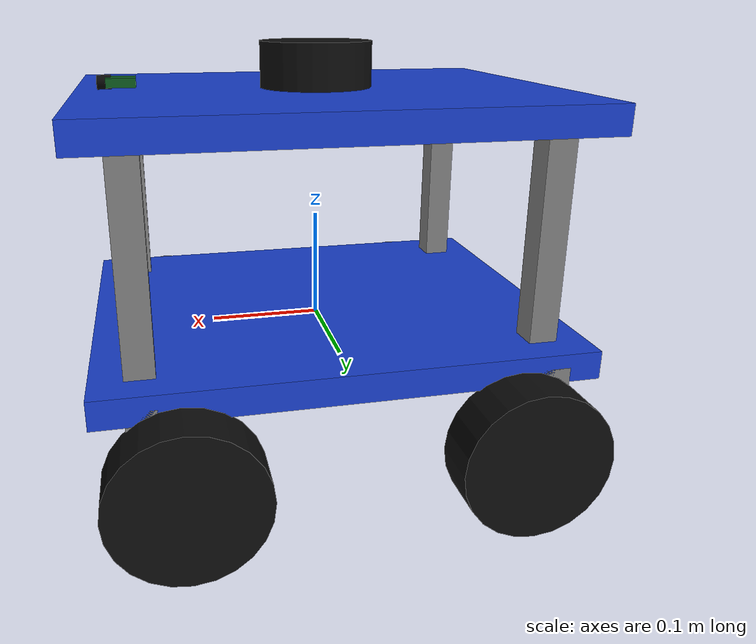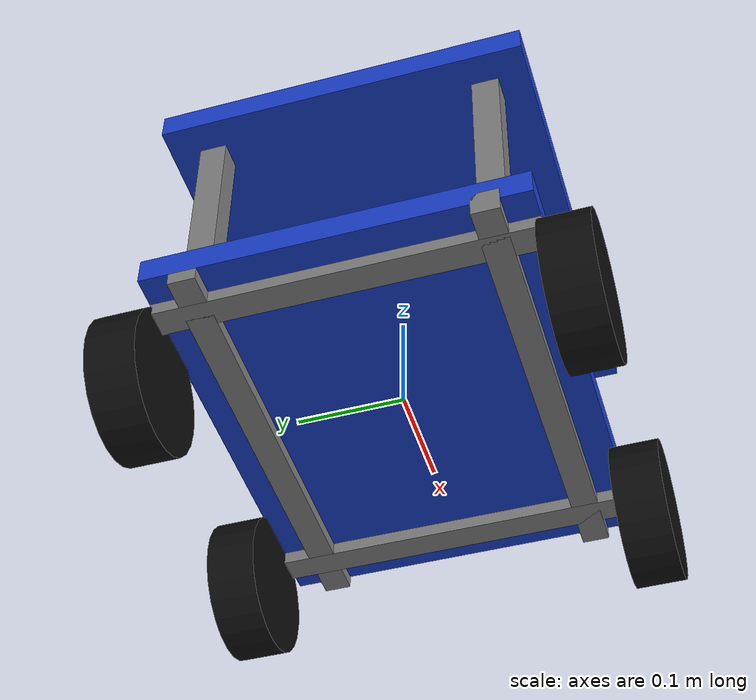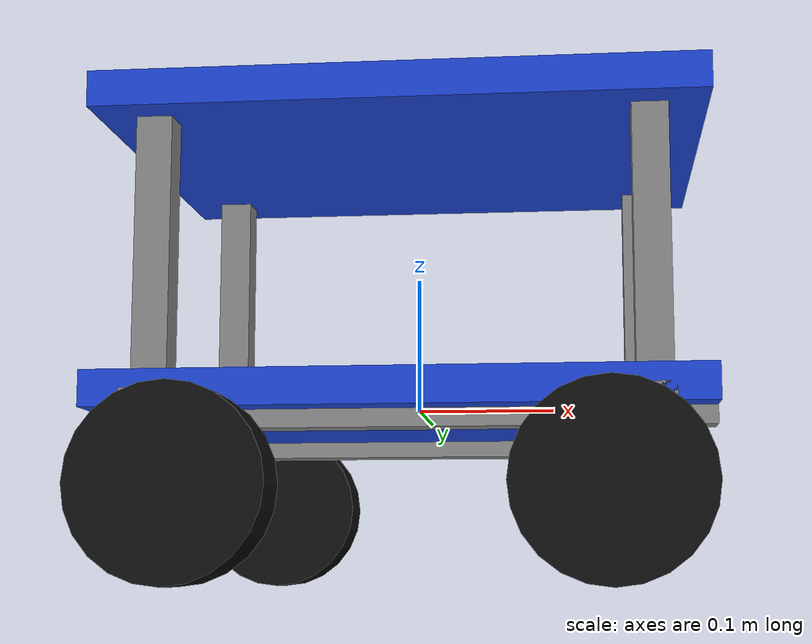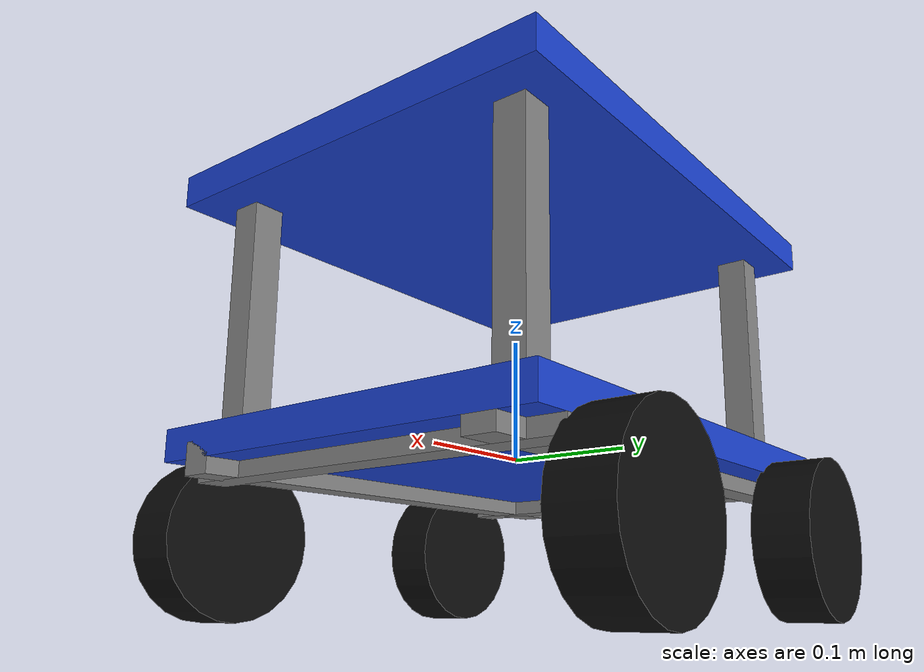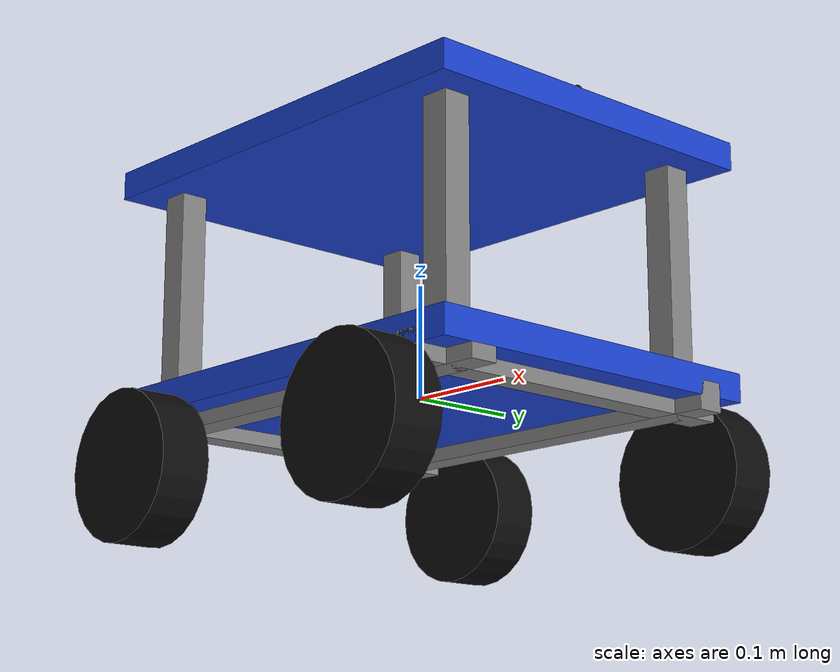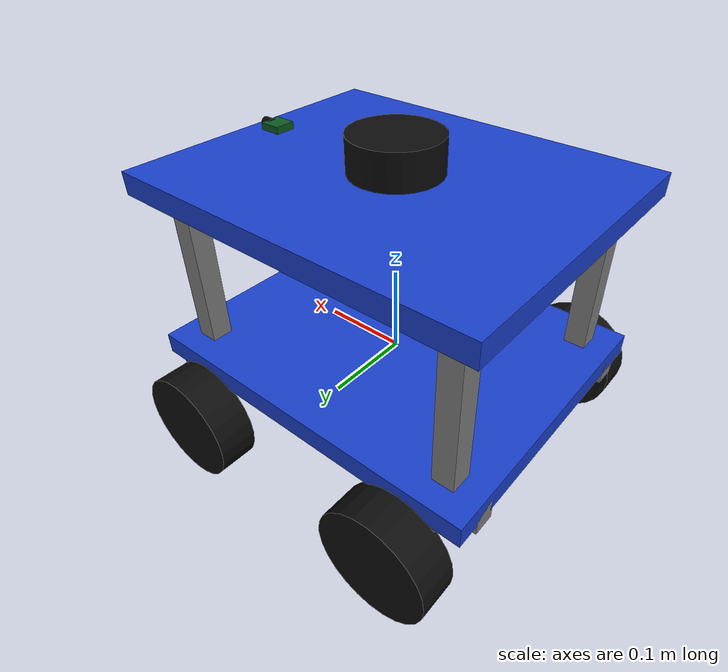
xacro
<?xml version="1.0"?>
<robot xmlns:xacro="http://www.ros.org/wiki/xacro" name="robot">

<xacro:include filename="robot_core.xacro"/>
<xacro:include filename="lidar.xacro"/>
<xacro:include filename="camera.xacro"/>
<xacro:include filename="ros2_control.xacro"/>

</robot>

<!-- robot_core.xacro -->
<robot xmlns:xacro="http://www.ros.org/wiki/xacro" name="agv">

  <!-- ==================== MATERIALS ==================== -->
  <material name="blue">
    <color rgba="0.1 0.25 0.8 1.0"/>
  </material>

  <material name="black">
    <color rgba="0.05 0.05 0.05 1.0"/>
  </material>

  <material name="grey">
    <color rgba="0.5 0.5 0.5 1.0"/>
  </material>

  <!-- ==================== BASE LINK ==================== -->
  <!--
       Gom cac thanh khung duoi va 4 tru vao base_link.
       Khong tao rieng lower_rail, lower_cross hoac support_post.
       Hinh dang khung va tru van duoc giu bang cac khoi box.
  -->

  <link name="base_link">

    <!-- Tam san duoi -->
    <visual>
      <origin xyz="0 0 0" rpy="0 0 0"/>
      <geometry>
        <box size="0.42 0.34 0.025"/>
      </geometry>
      <material name="blue"/>
    </visual>

    <collision>
      <origin xyz="0 0 0" rpy="0 0 0"/>
      <geometry>
        <box size="0.42 0.34 0.025"/>
      </geometry>
    </collision>

    <!-- Thanh khung duoi ben trai -->
    <visual>
      <origin xyz="0 0.13 -0.0125" rpy="0 0 0"/>
      <geometry>
        <box size="0.42 0.025 0.025"/>
      </geometry>
      <material name="grey"/>
    </visual>

    <collision>
      <origin xyz="0 0.13 -0.0125" rpy="0 0 0"/>
      <geometry>
        <box size="0.42 0.025 0.025"/>
      </geometry>
    </collision>

    <!-- Thanh khung duoi ben phai -->
    <visual>
      <origin xyz="0 -0.13 -0.0125" rpy="0 0 0"/>
      <geometry>
        <box size="0.42 0.025 0.025"/>
      </geometry>
      <material name="grey"/>
    </visual>

    <collision>
      <origin xyz="0 -0.13 -0.0125" rpy="0 0 0"/>
      <geometry>
        <box size="0.42 0.025 0.025"/>
      </geometry>
    </collision>

    <!-- Thanh ngang khung duoi phia truoc -->
    <visual>
      <origin xyz="0.17 0 -0.0125" rpy="0 0 0"/>
      <geometry>
        <box size="0.025 0.34 0.025"/>
      </geometry>
      <material name="grey"/>
    </visual>

    <collision>
      <origin xyz="0.17 0 -0.0125" rpy="0 0 0"/>
      <geometry>
        <box size="0.025 0.34 0.025"/>
      </geometry>
    </collision>

    <!-- Thanh ngang khung duoi phia sau -->
    <visual>
      <origin xyz="-0.17 0 -0.0125" rpy="0 0 0"/>
      <geometry>
        <box size="0.025 0.34 0.025"/>
      </geometry>
      <material name="grey"/>
    </visual>

    <collision>
      <origin xyz="-0.17 0 -0.0125" rpy="0 0 0"/>
      <geometry>
        <box size="0.025 0.34 0.025"/>
      </geometry>
    </collision>

    <!-- Tru dung goc truoc ben trai -->
    <visual>
      <origin xyz="0.17 0.13 0.1025" rpy="0 0 0"/>
      <geometry>
        <box size="0.025 0.025 0.18"/>
      </geometry>
      <material name="grey"/>
    </visual>

    <collision>
      <origin xyz="0.17 0.13 0.1025" rpy="0 0 0"/>
      <geometry>
        <box size="0.025 0.025 0.18"/>
      </geometry>
    </collision>

    <!-- Tru dung goc truoc ben phai -->
    <visual>
      <origin xyz="0.17 -0.13 0.1025" rpy="0 0 0"/>
      <geometry>
        <box size="0.025 0.025 0.18"/>
      </geometry>
      <material name="grey"/>
    </visual>

    <collision>
      <origin xyz="0.17 -0.13 0.1025" rpy="0 0 0"/>
      <geometry>
        <box size="0.025 0.025 0.18"/>
      </geometry>
    </collision>

    <!-- Tru dung goc sau ben trai -->
    <visual>
      <origin xyz="-0.17 0.13 0.1025" rpy="0 0 0"/>
      <geometry>
        <box size="0.025 0.025 0.18"/>
      </geometry>
      <material name="grey"/>
    </visual>

    <collision>
      <origin xyz="-0.17 0.13 0.1025" rpy="0 0 0"/>
      <geometry>
        <box size="0.025 0.025 0.18"/>
      </geometry>
    </collision>

    <!-- Tru dung goc sau ben phai -->
    <visual>
      <origin xyz="-0.17 -0.13 0.1025" rpy="0 0 0"/>
      <geometry>
        <box size="0.025 0.025 0.18"/>
      </geometry>
      <material name="grey"/>
    </visual>

    <collision>
      <origin xyz="-0.17 -0.13 0.1025" rpy="0 0 0"/>
      <geometry>
        <box size="0.025 0.025 0.18"/>
      </geometry>
    </collision>

    <!-- Khoi luong va mo-men quan tinh cua khung duoi -->
    <inertial>
      <origin xyz="0 0 0.02" rpy="0 0 0"/>
      <mass value="5.6"/>
      <inertia
        ixx="0.055"
        ixy="0.0"
        ixz="0.0"
        iyy="0.075"
        iyz="0.0"
        izz="0.12"/>
    </inertial>

  </link>

  <!-- ==================== UPPER DECK ==================== -->
  <!-- San tren duoc giu thanh mot link rieng -->

  <link name="upper_deck">

    <visual>
      <origin xyz="0 0 0" rpy="0 0 0"/>
      <geometry>
        <box size="0.42 0.34 0.025"/>
      </geometry>
      <material name="blue"/>
    </visual>

    <collision>
      <origin xyz="0 0 0" rpy="0 0 0"/>
      <geometry>
        <box size="0.42 0.34 0.025"/>
      </geometry>
    </collision>

    <inertial>
      <origin xyz="0 0 0" rpy="0 0 0"/>
      <mass value="2.0"/>
      <inertia
        ixx="0.019"
        ixy="0.0"
        ixz="0.0"
        iyy="0.031"
        iyz="0.0"
        izz="0.045"/>
    </inertial>

  </link>

  <!-- Gan san tren vao khung duoi -->
  <joint name="upper_deck_joint" type="fixed">
    <parent link="base_link"/>
    <child link="upper_deck"/>
    <origin xyz="0 0 0.205" rpy="0 0 0"/>
  </joint>

  <!-- ==================== WHEEL MACRO ==================== -->

  <xacro:macro name="wheel" params="name x y side">

    <link name="${name}_wheel">
      <visual>
        <origin xyz="0 0 0" rpy="0 0 0"/>
        <geometry>
          <cylinder radius="0.065" length="0.045"/>
        </geometry>
        <material name="black"/>
      </visual>

      <collision>
        <origin xyz="0 0 0" rpy="0 0 0"/>
        <geometry>
          <cylinder radius="0.065" length="0.045"/>
        </geometry>
      </collision>

      <inertial>
        <origin xyz="0 0 0" rpy="0 0 0"/>
        <mass value="0.5"/>
        <inertia
          ixx="0.0012"
          ixy="0.0"
          ixz="0.0"
          iyy="0.0012"
          iyz="0.0"
          izz="0.0012"/>
      </inertial>
    </link>

    <joint name="${name}_wheel_joint" type="continuous">
      <parent link="base_link"/>
      <child link="${name}_wheel"/>
      <origin xyz="${x} ${y} -0.065"
              rpy="${side == 'left' and '-1.57079632679' or '1.57079632679'} 0 0"/>
      <axis xyz="0 0 ${side == 'left' and '1' or '-1'}"/>
    </joint>

  </xacro:macro>

  <!-- 4 banh: z local huong ra ngoai, truc quay vat ly cung huong +Y -->
  <xacro:wheel name="lf" x="0.14" y="0.19" side="left"/>
  <xacro:wheel name="rf" x="0.14" y="-0.19" side="right"/>
  <xacro:wheel name="lr" x="-0.14" y="0.19" side="left"/>
  <xacro:wheel name="rr" x="-0.14" y="-0.19" side="right"/>

</robot>

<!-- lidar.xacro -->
<robot xmlns:xacro="http://www.ros.org/wiki/xacro">

  <!-- ==================== LIDAR JOINT ==================== -->
  <!-- Gan LiDAR tren san tang 2 -->
  <joint name="lidar_joint" type="fixed">
    <parent link="upper_deck"/>
    <child link="laser_frame"/>
    <!--
      San tren day 0.205 m so voi base_link.
      Tam LiDAR cao 0.0325 m so voi upper_deck,
      de day LiDAR nam sat mat tren san.
    -->
    <origin xyz="0 0 0.0325" rpy="0 0 0"/>
  </joint>

  <!-- ==================== LIDAR LINK ==================== -->
  <link name="laser_frame">

    <!-- Hinh dang LiDAR -->
    <visual>
      <origin xyz="0 0 0" rpy="0 0 0"/>
      <geometry>
        <cylinder radius="0.05" length="0.04"/>
      </geometry>
      <material name="black"/>
    </visual>

    <!-- Vung va cham -->
    <collision>
      <origin xyz="0 0 0" rpy="0 0 0"/>
      <geometry>
        <cylinder radius="0.05" length="0.04"/>
      </geometry>
    </collision>

    <!-- Khoi luong va mo-men quan tinh -->
    <inertial>
      <origin xyz="0 0 0" rpy="0 0 0"/>
      <mass value="0.1"/>
      <inertia
        ixx="0.0000708"
        ixy="0.0"
        ixz="0.0"
        iyy="0.0000708"
        iyz="0.0"
        izz="0.000125"/>
    </inertial>

  </link>

  <!-- ==================== GAZEBO LIDAR SENSOR ==================== -->
  <gazebo reference="laser_frame">

    <material>Gazebo/Black</material>

    <sensor name="laser" type="ray">

      <!-- Vi tri cam bien so voi laser_frame -->
      <pose>0 0 0 0 0 0</pose>

      <!-- Hien thi tia quet trong Gazebo -->
      <visualize>false</visualize>

      <!-- Tan so quet: 10 Hz -->
      <update_rate>10</update_rate>

      <ray>
        <scan>
          <horizontal>
            <!-- So mau quet -->
            <samples>360</samples>

            <!-- Goc quet tu -180 den +180 do -->
            <min_angle>-3.14159265</min_angle>
            <max_angle>3.14159265</max_angle>
          </horizontal>
        </scan>

        <range>
          <!-- Khoang cach do toi thieu -->
          <min>0.3</min>

          <!-- Khoang cach do toi da -->
          <max>12.0</max>

          <!-- Do phan giai khoang cach -->
          <resolution>0.01</resolution>
        </range>
      </ray>

      <!-- Plugin ket noi cam bien Gazebo voi ROS 2 -->
      <plugin name="laser_controller"
              filename="libgazebo_ros_ray_sensor.so">

        <ros>
          <argument>~/out:=scan</argument>
        </ros>

        <output_type>sensor_msgs/LaserScan</output_type>

        <frame_name>laser_frame</frame_name>

      </plugin>

    </sensor>

  </gazebo>

</robot>

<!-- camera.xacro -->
<robot xmlns:xacro="http://www.ros.org/wiki/xacro">

  <!-- RASPBERRY PI CAMERA OV5647 - 5MP                   -->
  <!-- Board: approximately 25 x 24 mm                    -->
  <!-- Diagonal FOV: 160 degrees                          -->
  <!-- Simulated output: 1920 x 1080                      -->

  <!-- Gan camera tren san tang 2, huong ra phia truoc -->
  <joint name="camera_joint" type="fixed">
    <parent link="upper_deck"/>
    <child link="camera_link"/>
    <!-- x duong la phia truoc xe; z la phia tren san -->
    <origin xyz="0.17 0 0.02" rpy="0 0 0"/>
  </joint>

  <!-- Than camera va bang mach -->
  <link name="camera_link">

    <visual>
      <origin xyz="0 0 0" rpy="0 0 0"/>
      <geometry>
        <!-- Bang mach dai 25 mm, rong 24 mm, day 8 mm -->
        <box size="0.025 0.024 0.008"/>
      </geometry>
      <material name="camera_board_green">
        <color rgba="0.05 0.35 0.12 1.0"/>
      </material>
    </visual>

    <collision>
      <origin xyz="0 0 0" rpy="0 0 0"/>
      <geometry>
        <box size="0.025 0.024 0.008"/>
      </geometry>
    </collision>

    <!-- Khoi lens minh hoa, nhon ra phia truoc theo truc +X -->
    <visual>
      <origin xyz="0.014 0 0" rpy="0 1.5707963 0"/>
      <geometry>
        <cylinder radius="0.006" length="0.012"/>
      </geometry>
      <material name="camera_lens_black">
        <color rgba="0.03 0.03 0.03 1.0"/>
      </material>
    </visual>

    <collision>
      <origin xyz="0.014 0 0" rpy="0 1.5707963 0"/>
      <geometry>
        <cylinder radius="0.006" length="0.012"/>
      </geometry>
    </collision>

    <inertial>
      <origin xyz="0 0 0" rpy="0 0 0"/>
      <mass value="0.03"/>
      <inertia
        ixx="0.0000015"
        ixy="0"
        ixz="0"
        iyy="0.0000015"
        iyz="0"
        izz="0.0000015"/>
    </inertial>

  </link>

  <!-- Optical frame theo quy uoc ROS -->
  <joint name="camera_optical_joint" type="fixed">
    <parent link="camera_link"/>
    <child link="camera_link_optical"/>
    <origin xyz="0 0 0" rpy="${-pi/2} 0 ${-pi/2}"/>
  </joint>

  <link name="camera_link_optical"/>

  <!-- GAZEBO CLASSIC CAMERA SENSOR                       -->
  <gazebo reference="camera_link">

    <material>Gazebo/Green</material>

    <sensor name="camera" type="camera">
      <pose>0 0 0 0 0 0</pose>

      <visualize>true</visualize>
      <always_on>true</always_on>
      <update_rate>10</update_rate>

      <camera>
        <!--
          Diagonal FOV 160 degrees.
          With a 16:9 image, horizontal FOV is approximately
          157 degrees. Gazebo expects horizontal FOV in radians.
        -->
        <horizontal_fov>1.74533</horizontal_fov>

        <image>
          <width>1920</width>
          <height>1080</height>
          <format>R8G8B8</format>
        </image>

        <clip>
          <near>0.05</near>
          <far>30.0</far>
        </clip>
      </camera>

      <plugin name="camera_controller"
              filename="libgazebo_ros_camera.so">

        <ros>
          <namespace>/camera</namespace>
        </ros>

        <camera_name>ov5647</camera_name>
        <frame_name>camera_link_optical</frame_name>

      </plugin>

    </sensor>
  </gazebo>

</robot>
